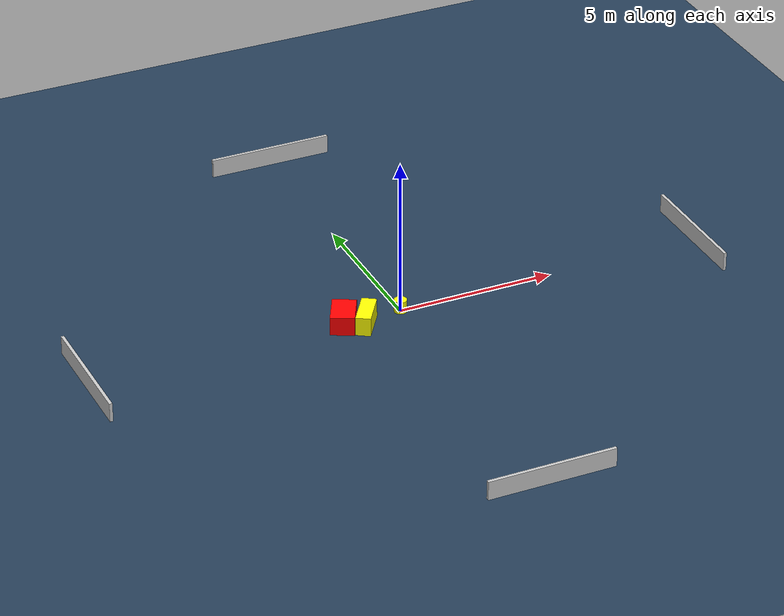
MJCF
<?xml version="1.0" ?>
<mujoco model="generated_environment">
  <option timestep="0.01" integrator="RK4" cone="elliptic"/>
  <default>
    <geom density="1"/>
  </default>
  <asset>
    <texture builtin="gradient" height="3072" name="skybox" rgb1="0.3 0.5 0.7" rgb2="0 0 0" type="skybox" width="512"/>
    <texture builtin="checker" height="300" name="groundplane" rgb1="0.2 0.3 0.4" rgb2="0.1 0.2 0.3" type="2d" width="300"/>
    <material name="groundplane" reflectance="0.2" texrepeat="5 5" texture="groundplane"/>
  </asset>
  <worldbody>
    <light dir="0 0 -1" directional="true" pos="0 0 1.5"/>
    <geom condim="3" friction="0.5 0.005 0.001" material="groundplane" name="floor" pos="0 0 0" size="0 0 0.05" type="plane"/>
    <body name="walls">
      <geom name="wall_1" condim="4" pos="-10.0 0.0 0.3" rgba="0.800000011920929 0.800000011920929 0.800000011920929 1.0" size="0.05 2.0 0.3" type="box"/>
      <geom name="wall_2" condim="4" pos="10.0 0.0 0.3" rgba="0.800000011920929 0.800000011920929 0.800000011920929 1.0" size="0.05 2.0 0.3" type="box"/>
      <geom name="wall_3" condim="4" pos="0.0 -10.0 0.3" rgba="0.800000011920929 0.800000011920929 0.800000011920929 1.0" size="2.0 0.05 0.3" type="box"/>
      <geom name="wall_4" condim="4" pos="0.0 10.0 0.3" rgba="0.800000011920929 0.800000011920929 0.800000011920929 1.0" size="2.0 0.05 0.3" type="box"/>
    </body>
    <body name="robot">
      <joint name="joint_x" type="slide" pos="0 0 0" axis="1 0 0"/>
      <joint name="joint_y" type="slide" pos="0 0 0" axis="0 1 0"/>
      <geom name="robot" type="cylinder" pos="0.0 0.0 0.2" size="0.2 0.2 0.0" mass="5.0" friction="1.0 0.005 0.0001" condim="4" rgba="1.0 1.0 0.0 1.0"/>
    </body>
    <body name="obstacle_1_movable">
      <geom name="obstacle_1_movable" condim="4" pos="-1.2758484669743564 -0.3300335908324473 0.3" euler="0 0 326.34028392532383" friction="0.0 0.005 0.001" rgba="1.0 1.0 0.0 1.0" size="0.23128641997675758 0.5825281906344403 0.3" type="box" mass="0.1"/>
      <joint type="free"/>
    </body>
    <body name="obstacle_2_static">
      <geom name="obstacle_2_static" condim="4" pos="-1.8999710854474796 -0.06274925833634969 0.3" euler="0 0 152.6457086820608" friction="0.0 0.005 0.001" rgba="1.0 0.0 0.0 1.0" size="0.37227788700830683 0.5387878049081721 0.3" type="box"/>
    </body>
  </worldbody>
  <actuator>
    <motor name="actuator_x" joint="joint_x" gear="1" ctrlrange="-1 1"/>
    <motor name="actuator_y" joint="joint_y" gear="1" ctrlrange="-1 1"/>
  </actuator>
</mujoco>
